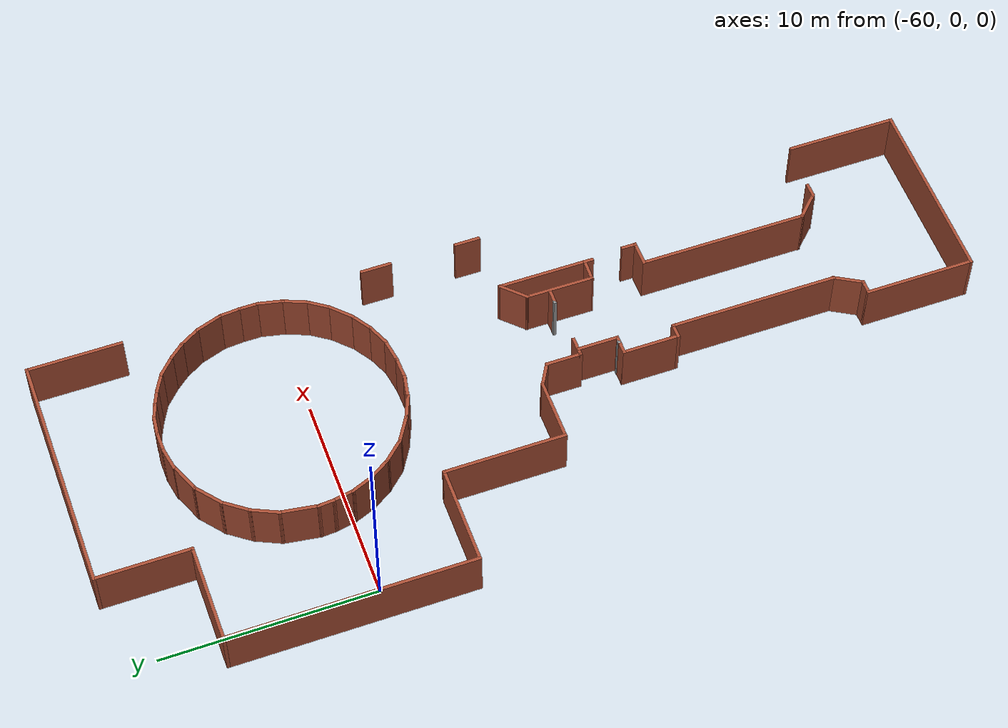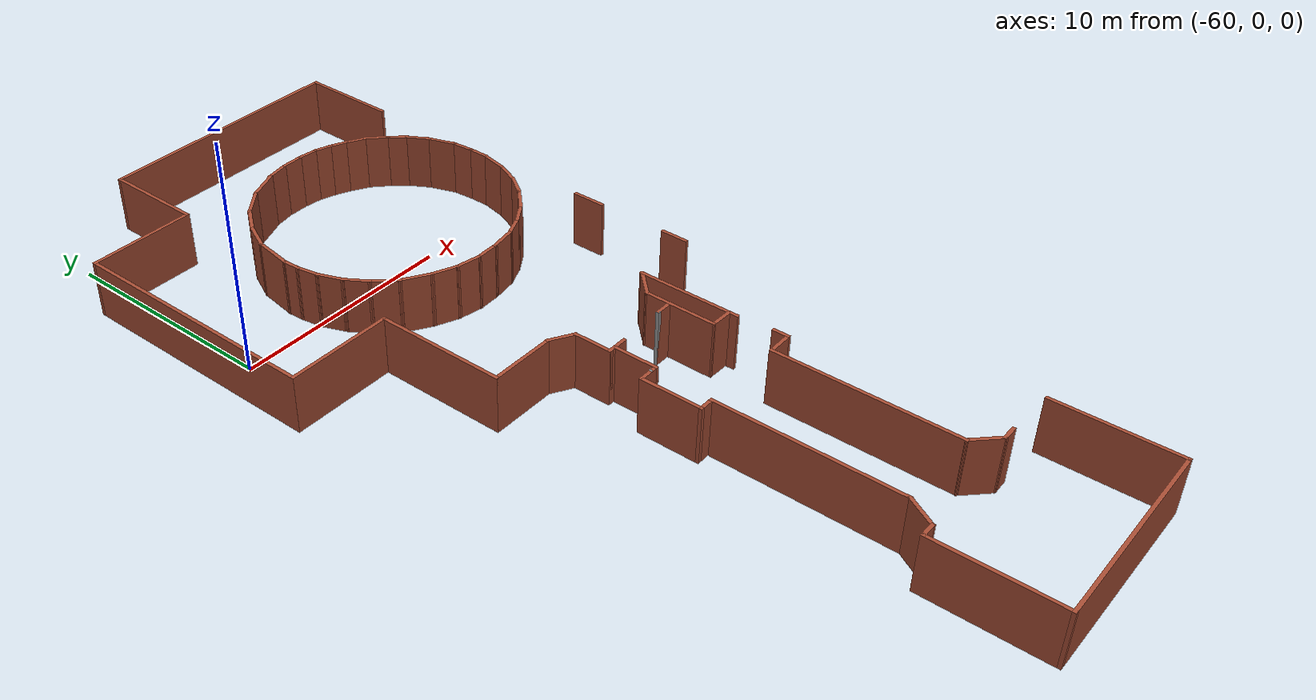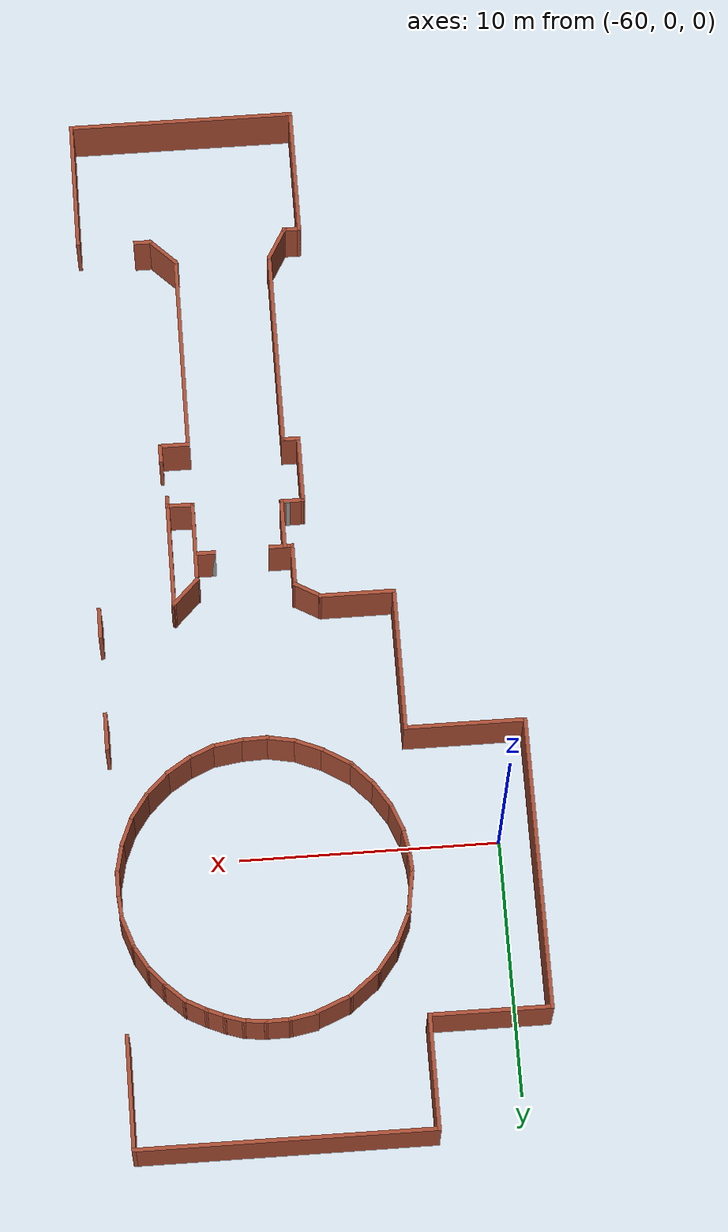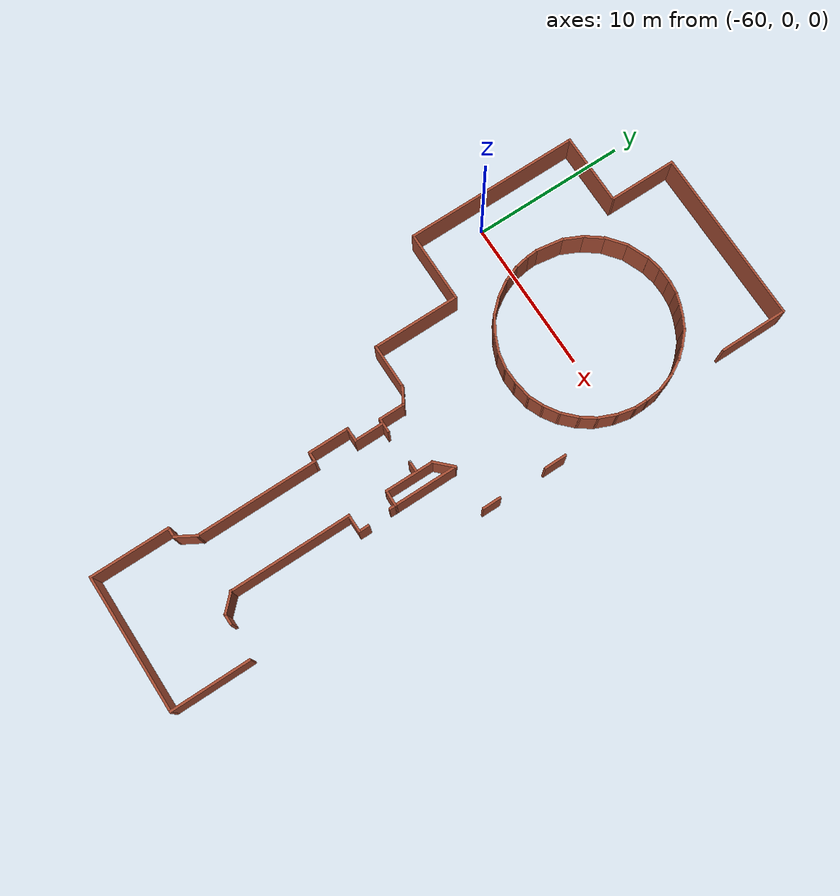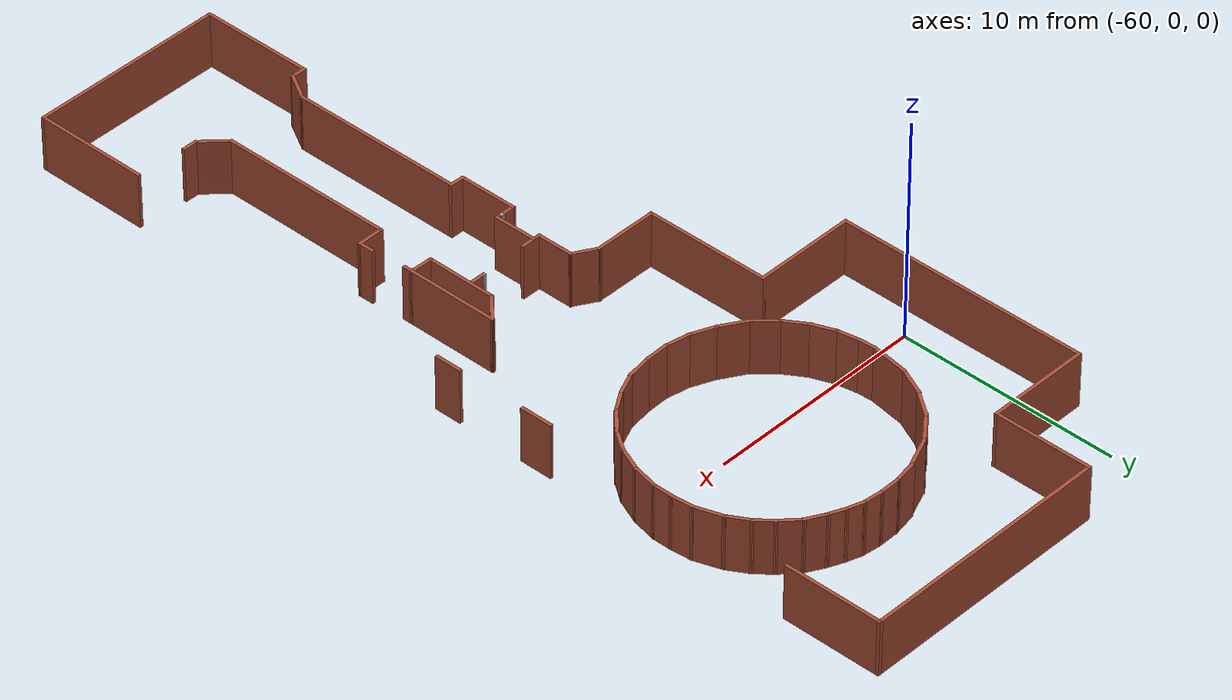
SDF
<sdf version="1.7">
 <model name="TD1modelado">
  <pose>-6.73237 -9.45588 0 0 -0 0</pose>
  <link name="Wall_10">
   <collision name="Wall_10_Collision">
    <geometry><box><size>0.5 0.15 2.5</size></box></geometry>
    <pose>0 0 1.25 0 -0 0</pose>
   </collision>
   <visual name="Wall_10_Visual">
    <pose>0 0 1.25 0 -0 0</pose>
    <geometry><box><size>0.5 0.15 2.5</size></box></geometry>
    <material>
     <script><uri>file://media/materials/scripts/gazebo.material</uri><name>Gazebo/Bricks</name></script>
     <ambient>1 1 1 1</ambient>
    </material>
    <meta><layer>0</layer></meta>
   </visual>
   <pose>-41.4096 -4.6047 0 0 -0 1.5708</pose>
  </link>
  <link name="Wall_100">
   <collision name="Wall_100_Collision">
    <geometry><box><size>1.43544 0.15 2.5</size></box></geometry>
    <pose>0 0 1.25 0 -0 0</pose>
   </collision>
   <visual name="Wall_100_Visual">
    <pose>0 0 1.25 0 -0 0</pose>
    <geometry><box><size>1.43544 0.15 2.5</size></box></geometry>
    <material>
     <script><uri>file://media/materials/scripts/gazebo.material</uri><name>Gazebo/Bricks</name></script>
     <ambient>1 1 1 1</ambient>
    </material>
    <meta><layer>0</layer></meta>
   </visual>
   <pose>-49.2151 13.2258 0 0 -0 -2.00813</pose>
  </link>
  <link name="Wall_101">
   <collision name="Wall_101_Collision">
    <geometry><box><size>1.83326 0.15 2.5</size></box></geometry>
    <pose>0 0 1.25 0 -0 0</pose>
   </collision>
   <visual name="Wall_101_Visual">
    <pose>0 0 1.25 0 -0 0</pose>
    <geometry><box><size>1.83326 0.15 2.5</size></box></geometry>
    <material>
     <script><uri>file://media/materials/scripts/gazebo.material</uri><name>Gazebo/Bricks</name></script>
     <ambient>1 1 1 1</ambient>
    </material>
    <meta><layer>0</layer></meta>
   </visual>
   <pose>-49.6159 11.8118 0 0 -0 -1.72413</pose>
  </link>
  <link name="Wall_102">
   <collision name="Wall_102_Collision">
    <geometry><box><size>0.84713 0.15 2.5</size></box></geometry>
    <pose>0 0 1.25 0 -0 0</pose>
   </collision>
   <visual name="Wall_102_Visual">
    <pose>0 0 1.25 0 -0 0</pose>
    <geometry><box><size>0.84713 0.15 2.5</size></box></geometry>
    <material>
     <script><uri>file://media/materials/scripts/gazebo.material</uri><name>Gazebo/Bricks</name></script>
     <ambient>1 1 1 1</ambient>
    </material>
    <meta><layer>0</layer></meta>
   </visual>
   <pose>-49.7218 10.6322 0 0 -0 -1.50567</pose>
  </link>
  <link name="Wall_104">
   <collision name="Wall_104_Collision">
    <geometry><box><size>1.08737 0.15 2.5</size></box></geometry>
    <pose>0 0 1.25 0 -0 0</pose>
   </collision>
   <visual name="Wall_104_Visual">
    <pose>0 0 1.25 0 -0 0</pose>
    <geometry><box><size>1.08737 0.15 2.5</size></box></geometry>
    <material>
     <script><uri>file://media/materials/scripts/gazebo.material</uri><name>Gazebo/Bricks</name></script>
     <ambient>1 1 1 1</ambient>
    </material>
    <meta><layer>0</layer></meta>
   </visual>
   <pose>-49.6159 9.82316 0 0 -0 -1.39239</pose>
  </link>
  <link name="Wall_105">
   <collision name="Wall_105_Collision">
    <geometry><box><size>1.22277 0.15 2.5</size></box></geometry>
    <pose>0 0 1.25 0 -0 0</pose>
   </collision>
   <visual name="Wall_105_Visual">
    <pose>0 0 1.25 0 -0 0</pose>
    <geometry><box><size>1.22277 0.15 2.5</size></box></geometry>
    <material>
     <script><uri>file://media/materials/scripts/gazebo.material</uri><name>Gazebo/Bricks</name></script>
     <ambient>1 1 1 1</ambient>
    </material>
    <meta><layer>0</layer></meta>
   </visual>
   <pose>-49.3361 8.86286 0 0 -0 -1.19552</pose>
  </link>
  <link name="Wall_106">
   <collision name="Wall_106_Collision">
    <geometry><box><size>1.2113 0.15 2.5</size></box></geometry>
    <pose>0 0 1.25 0 -0 0</pose>
   </collision>
   <visual name="Wall_106_Visual">
    <pose>0 0 1.25 0 -0 0</pose>
    <geometry><box><size>1.2113 0.15 2.5</size></box></geometry>
    <material>
     <script><uri>file://media/materials/scripts/gazebo.material</uri><name>Gazebo/Bricks</name></script>
     <ambient>1 1 1 1</ambient>
    </material>
    <meta><layer>0</layer></meta>
   </visual>
   <pose>-48.8522 7.91768 0 0 -0 -0.998603</pose>
  </link>
  <link name="Wall_107">
   <collision name="Wall_107_Collision">
    <geometry><box><size>1.30569 0.15 2.5</size></box></geometry>
    <pose>0 0 1.25 0 -0 0</pose>
   </collision>
   <visual name="Wall_107_Visual">
    <pose>0 0 1.25 0 -0 0</pose>
    <geometry><box><size>1.30569 0.15 2.5</size></box></geometry>
    <material>
     <script><uri>file://media/materials/scripts/gazebo.material</uri><name>Gazebo/Bricks</name></script>
     <ambient>1 1 1 1</ambient>
    </material>
    <meta><layer>0</layer></meta>
   </visual>
   <pose>-48.1717 7.04812 0 0 -0 -0.822418</pose>
  </link>
  <link name="Wall_108">
   <collision name="Wall_108_Collision">
    <geometry><box><size>1.42607 0.15 2.5</size></box></geometry>
    <pose>0 0 1.25 0 -0 0</pose>
   </collision>
   <visual name="Wall_108_Visual">
    <pose>0 0 1.25 0 -0 0</pose>
    <geometry><box><size>1.42607 0.15 2.5</size></box></geometry>
    <material>
     <script><uri>file://media/materials/scripts/gazebo.material</uri><name>Gazebo/Bricks</name></script>
     <ambient>1 1 1 1</ambient>
    </material>
    <meta><layer>0</layer></meta>
   </visual>
   <pose>-47.234 6.29197 0 0 -0 -0.548549</pose>
  </link>
  <link name="Wall_109">
   <collision name="Wall_109_Collision">
    <geometry><box><size>1.24815 0.15 2.5</size></box></geometry>
    <pose>0 0 1.25 0 -0 0</pose>
   </collision>
   <visual name="Wall_109_Visual">
    <pose>0 0 1.25 0 -0 0</pose>
    <geometry><box><size>1.24815 0.15 2.5</size></box></geometry>
    <material>
     <script><uri>file://media/materials/scripts/gazebo.material</uri><name>Gazebo/Bricks</name></script>
     <ambient>1 1 1 1</ambient>
    </material>
    <meta><layer>0</layer></meta>
   </visual>
   <pose>-46.183 5.74755 0 0 -0 -0.39585</pose>
  </link>
  <link name="Wall_110">
   <collision name="Wall_110_Collision">
    <geometry><box><size>1.21184 0.15 2.5</size></box></geometry>
    <pose>0 0 1.25 0 -0 0</pose>
   </collision>
   <visual name="Wall_110_Visual">
    <pose>0 0 1.25 0 -0 0</pose>
    <geometry><box><size>1.21184 0.15 2.5</size></box></geometry>
    <material>
     <script><uri>file://media/materials/scripts/gazebo.material</uri><name>Gazebo/Bricks</name></script>
     <ambient>1 1 1 1</ambient>
    </material>
    <meta><layer>0</layer></meta>
   </visual>
   <pose>-45.1546 5.43753 0 0 -0 -0.186223</pose>
  </link>
  <link name="Wall_111">
   <collision name="Wall_111_Collision">
    <geometry><box><size>1.14857 0.15 2.5</size></box></geometry>
    <pose>0 0 1.25 0 -0 0</pose>
   </collision>
   <visual name="Wall_111_Visual">
    <pose>0 0 1.25 0 -0 0</pose>
    <geometry><box><size>1.14857 0.15 2.5</size></box></geometry>
    <material>
     <script><uri>file://media/materials/scripts/gazebo.material</uri><name>Gazebo/Bricks</name></script>
     <ambient>1 1 1 1</ambient>
    </material>
    <meta><layer>0</layer></meta>
   </visual>
   <pose>-44.1338 5.35435 0 0 -0 0.030294</pose>
  </link>
  <link name="Wall_112">
   <collision name="Wall_112_Collision">
    <geometry><box><size>1.26643 0.15 2.5</size></box></geometry>
    <pose>0 0 1.25 0 -0 0</pose>
   </collision>
   <visual name="Wall_112_Visual">
    <pose>0 0 1.25 0 -0 0</pose>
    <geometry><box><size>1.26643 0.15 2.5</size></box></geometry>
    <material>
     <script><uri>file://media/materials/scripts/gazebo.material</uri><name>Gazebo/Bricks</name></script>
     <ambient>1 1 1 1</ambient>
    </material>
    <meta><layer>0</layer></meta>
   </visual>
   <pose>-43.0828 5.45265 0 0 -0 0.14956</pose>
  </link>
  <link name="Wall_113">
   <collision name="Wall_113_Collision">
    <geometry><box><size>1.1528 0.15 2.5</size></box></geometry>
    <pose>0 0 1.25 0 -0 0</pose>
   </collision>
   <visual name="Wall_113_Visual">
    <pose>0 0 1.25 0 -0 0</pose>
    <geometry><box><size>1.1528 0.15 2.5</size></box></geometry>
    <material>
     <script><uri>file://media/materials/scripts/gazebo.material</uri><name>Gazebo/Bricks</name></script>
     <ambient>1 1 1 1</ambient>
    </material>
    <meta><layer>0</layer></meta>
   </visual>
   <pose>-42.0696 5.73243 0 0 -0 0.402912</pose>
  </link>
  <link name="Wall_114">
   <collision name="Wall_114_Collision">
    <geometry><box><size>1.1904 0.15 2.5</size></box></geometry>
    <pose>0 0 1.25 0 -0 0</pose>
   </collision>
   <visual name="Wall_114_Visual">
    <pose>0 0 1.25 0 -0 0</pose>
    <geometry><box><size>1.1904 0.15 2.5</size></box></geometry>
    <material>
     <script><uri>file://media/materials/scripts/gazebo.material</uri><name>Gazebo/Bricks</name></script>
     <ambient>1 1 1 1</ambient>
    </material>
    <meta><layer>0</layer></meta>
   </visual>
   <pose>-41.1698 6.2088 0 0 -0 0.567844</pose>
  </link>
  <link name="Wall_115">
   <collision name="Wall_115_Collision">
    <geometry><box><size>1.32648 0.15 2.5</size></box></geometry>
    <pose>0 0 1.25 0 -0 0</pose>
   </collision>
   <visual name="Wall_115_Visual">
    <pose>0 0 1.25 0 -0 0</pose>
    <geometry><box><size>1.32648 0.15 2.5</size></box></geometry>
    <material>
     <script><uri>file://media/materials/scripts/gazebo.material</uri><name>Gazebo/Bricks</name></script>
     <ambient>1 1 1 1</ambient>
    </material>
    <meta><layer>0</layer></meta>
   </visual>
   <pose>-40.3078 6.89689 0 0 -0 0.767218</pose>
  </link>
  <link name="Wall_116">
   <collision name="Wall_116_Collision">
    <geometry><box><size>1.20308 0.15 2.5</size></box></geometry>
    <pose>0 0 1.25 0 -0 0</pose>
   </collision>
   <visual name="Wall_116_Visual">
    <pose>0 0 1.25 0 -0 0</pose>
    <geometry><box><size>1.20308 0.15 2.5</size></box></geometry>
    <material>
     <script><uri>file://media/materials/scripts/gazebo.material</uri><name>Gazebo/Bricks</name></script>
     <ambient>1 1 1 1</ambient>
    </material>
    <meta><layer>0</layer></meta>
   </visual>
   <pose>-39.5819 7.73621 0 0 -0 0.958894</pose>
  </link>
  <link name="Wall_117">
   <collision name="Wall_117_Collision">
    <geometry><box><size>1.28189 0.15 2.5</size></box></geometry>
    <pose>0 0 1.25 0 -0 0</pose>
   </collision>
   <visual name="Wall_117_Visual">
    <pose>0 0 1.25 0 -0 0</pose>
    <geometry><box><size>1.28189 0.15 2.5</size></box></geometry>
    <material>
     <script><uri>file://media/materials/scripts/gazebo.material</uri><name>Gazebo/Bricks</name></script>
     <ambient>1 1 1 1</ambient>
    </material>
    <meta><layer>0</layer></meta>
   </visual>
   <pose>-39.0601 8.68895 0 0 -0 1.17292</pose>
  </link>
  <link name="Wall_118">
   <collision name="Wall_118_Collision">
    <geometry><box><size>1.28018 0.15 2.5</size></box></geometry>
    <pose>0 0 1.25 0 -0 0</pose>
   </collision>
   <visual name="Wall_118_Visual">
    <pose>0 0 1.25 0 -0 0</pose>
    <geometry><box><size>1.28018 0.15 2.5</size></box></geometry>
    <material>
     <script><uri>file://media/materials/scripts/gazebo.material</uri><name>Gazebo/Bricks</name></script>
     <ambient>1 1 1 1</ambient>
    </material>
    <meta><layer>0</layer></meta>
   </visual>
   <pose>-38.7199 9.76267 0 0 -0 1.35503</pose>
  </link>
  <link name="Wall_120">
   <collision name="Wall_120_Collision">
    <geometry><box><size>1 0.15 2.5</size></box></geometry>
    <pose>0 0 1.25 0 -0 0</pose>
   </collision>
   <visual name="Wall_120_Visual">
    <pose>0 0 1.25 0 -0 0</pose>
    <geometry><box><size>1 0.15 2.5</size></box></geometry>
    <material>
     <script><uri>file://media/materials/scripts/gazebo.material</uri><name>Gazebo/Bricks</name></script>
     <ambient>1 1 1 1</ambient>
    </material>
    <meta><layer>0</layer></meta>
   </visual>
   <pose>-38.5989 10.7397 0 0 -0 1.5708</pose>
  </link>
  <link name="Wall_121">
   <collision name="Wall_121_Collision">
    <geometry><box><size>1.08755 0.15 2.5</size></box></geometry>
    <pose>0 0 1.25 0 -0 0</pose>
   </collision>
   <visual name="Wall_121_Visual">
    <pose>0 0 1.25 0 -0 0</pose>
    <geometry><box><size>1.08755 0.15 2.5</size></box></geometry>
    <material>
     <script><uri>file://media/materials/scripts/gazebo.material</uri><name>Gazebo/Bricks</name></script>
     <ambient>1 1 1 1</ambient>
    </material>
    <meta><layer>0</layer></meta>
   </visual>
   <pose>-38.6367 11.6319 0 0 -0 1.65153</pose>
  </link>
  <link name="Wall_122">
   <collision name="Wall_122_Collision">
    <geometry><box><size>1.37905 0.15 2.5</size></box></geometry>
    <pose>0 0 1.25 0 -0 0</pose>
   </collision>
   <visual name="Wall_122_Visual">
    <pose>0 0 1.25 0 -0 0</pose>
    <geometry><box><size>1.37905 0.15 2.5</size></box></geometry>
    <material>
     <script><uri>file://media/materials/scripts/gazebo.material</uri><name>Gazebo/Bricks</name></script>
     <ambient>1 1 1 1</ambient>
    </material>
    <meta><layer>0</layer></meta>
   </visual>
   <pose>-38.8711 12.6814 0 0 -0 1.89644</pose>
  </link>
  <link name="Wall_123">
   <collision name="Wall_123_Collision">
    <geometry><box><size>1.16673 0.15 2.5</size></box></geometry>
    <pose>0 0 1.25 0 -0 0</pose>
   </collision>
   <visual name="Wall_123_Visual">
    <pose>0 0 1.25 0 -0 0</pose>
    <geometry><box><size>1.16673 0.15 2.5</size></box></geometry>
    <material>
     <script><uri>file://media/materials/scripts/gazebo.material</uri><name>Gazebo/Bricks</name></script>
     <ambient>1 1 1 1</ambient>
    </material>
    <meta><layer>0</layer></meta>
   </visual>
   <pose>-39.3248 13.7022 0 0 -0 2.10101</pose>
  </link>
  <link name="Wall_124">
   <collision name="Wall_124_Collision">
    <geometry><box><size>0.986556 0.15 2.5</size></box></geometry>
    <pose>0 0 1.25 0 -0 0</pose>
   </collision>
   <visual name="Wall_124_Visual">
    <pose>0 0 1.25 0 -0 0</pose>
    <geometry><box><size>0.986556 0.15 2.5</size></box></geometry>
    <material>
     <script><uri>file://media/materials/scripts/gazebo.material</uri><name>Gazebo/Bricks</name></script>
     <ambient>1 1 1 1</ambient>
    </material>
    <meta><layer>0</layer></meta>
   </visual>
   <pose>-39.8541 14.4583 0 0 -0 2.27942</pose>
  </link>
  <link name="Wall_125">
   <collision name="Wall_125_Collision">
    <geometry><box><size>1.14501 0.15 2.5</size></box></geometry>
    <pose>0 0 1.25 0 -0 0</pose>
   </collision>
   <visual name="Wall_125_Visual">
    <pose>0 0 1.25 0 -0 0</pose>
    <geometry><box><size>1.14501 0.15 2.5</size></box></geometry>
    <material>
     <script><uri>file://media/materials/scripts/gazebo.material</uri><name>Gazebo/Bricks</name></script>
     <ambient>1 1 1 1</ambient>
    </material>
    <meta><layer>0</layer></meta>
   </visual>
   <pose>-40.4892 15.1162 0 0 -0 2.38844</pose>
  </link>
  <link name="Wall_126">
   <collision name="Wall_126_Collision">
    <geometry><box><size>1.04315 0.15 2.5</size></box></geometry>
    <pose>0 0 1.25 0 -0 0</pose>
   </collision>
   <visual name="Wall_126_Visual">
    <pose>0 0 1.25 0 -0 0</pose>
    <geometry><box><size>1.04315 0.15 2.5</size></box></geometry>
    <material>
     <script><uri>file://media/materials/scripts/gazebo.material</uri><name>Gazebo/Bricks</name></script>
     <ambient>1 1 1 1</ambient>
    </material>
    <meta><layer>0</layer></meta>
   </visual>
   <pose>-41.2454 15.6682 0 0 -0 2.64765</pose>
  </link>
  <link name="Wall_127">
   <collision name="Wall_127_Collision">
    <geometry><box><size>0.874794 0.15 2.5</size></box></geometry>
    <pose>0 0 1.25 0 -0 0</pose>
   </collision>
   <visual name="Wall_127_Visual">
    <pose>0 0 1.25 0 -0 0</pose>
    <geometry><box><size>0.874794 0.15 2.5</size></box></geometry>
    <material>
     <script><uri>file://media/materials/scripts/gazebo.material</uri><name>Gazebo/Bricks</name></script>
     <ambient>1 1 1 1</ambient>
    </material>
    <meta><layer>0</layer></meta>
   </visual>
   <pose>-41.9713 16.0235 0 0 -0 2.73396</pose>
  </link>
  <link name="Wall_128">
   <collision name="Wall_128_Collision">
    <geometry><box><size>0.881703 0.15 2.5</size></box></geometry>
    <pose>0 0 1.25 0 -0 0</pose>
   </collision>
   <visual name="Wall_128_Visual">
    <pose>0 0 1.25 0 -0 0</pose>
    <geometry><box><size>0.881703 0.15 2.5</size></box></geometry>
    <material>
     <script><uri>file://media/materials/scripts/gazebo.material</uri><name>Gazebo/Bricks</name></script>
     <ambient>1 1 1 1</ambient>
    </material>
    <meta><layer>0</layer></meta>
   </visual>
   <pose>-42.6518 16.2806 0 0 -0 2.82638</pose>
  </link>
  <link name="Wall_129">
   <collision name="Wall_129_Collision">
    <geometry><box><size>0.971661 0.15 2.5</size></box></geometry>
    <pose>0 0 1.25 0 -0 0</pose>
   </collision>
   <visual name="Wall_129_Visual">
    <pose>0 0 1.25 0 -0 0</pose>
    <geometry><box><size>0.971661 0.15 2.5</size></box></geometry>
    <material>
     <script><uri>file://media/materials/scripts/gazebo.material</uri><name>Gazebo/Bricks</name></script>
     <ambient>1 1 1 1</ambient>
    </material>
    <meta><layer>0</layer></meta>
   </visual>
   <pose>-43.4079 16.4394 0 0 -0 3.03093</pose>
  </link>
  <link name="Wall_130">
   <collision name="Wall_130_Collision">
    <geometry><box><size>1.07249 0.15 2.5</size></box></geometry>
    <pose>0 0 1.25 0 -0 0</pose>
   </collision>
   <visual name="Wall_130_Visual">
    <pose>0 0 1.25 0 -0 0</pose>
    <geometry><box><size>1.07249 0.15 2.5</size></box></geometry>
    <material>
     <script><uri>file://media/materials/scripts/gazebo.material</uri><name>Gazebo/Bricks</name></script>
     <ambient>1 1 1 1</ambient>
    </material>
    <meta><layer>0</layer></meta>
   </visual>
   <pose>-44.2775 16.4772 0 0 -0 -3.1252</pose>
  </link>
  <link name="Wall_131">
   <collision name="Wall_131_Collision">
    <geometry><box><size>1.16447 0.15 2.5</size></box></geometry>
    <pose>0 0 1.25 0 -0 0</pose>
   </collision>
   <visual name="Wall_131_Visual">
    <pose>0 0 1.25 0 -0 0</pose>
    <geometry><box><size>1.16447 0.15 2.5</size></box></geometry>
    <material>
     <script><uri>file://media/materials/scripts/gazebo.material</uri><name>Gazebo/Bricks</name></script>
     <ambient>1 1 1 1</ambient>
    </material>
    <meta><layer>0</layer></meta>
   </visual>
   <pose>-45.2378 16.3789 0 0 -0 -2.96174</pose>
  </link>
  <link name="Wall_14">
   <collision name="Wall_14_Collision">
    <geometry><box><size>0.15 0.15 2.5</size></box></geometry>
    <pose>0 0 1.25 0 -0 0</pose>
   </collision>
   <visual name="Wall_14_Visual">
    <pose>0 0 1.25 0 -0 0</pose>
    <geometry><box><size>0.15 0.15 2.5</size></box></geometry>
    <material>
     <script><uri>file://media/materials/scripts/gazebo.material</uri><name>Gazebo/Grey</name></script>
     <ambient>1 1 1 1</ambient>
    </material>
    <meta><layer>0</layer></meta>
   </visual>
   <pose>-43.0807 -2.35971 0 0 -0 0</pose>
  </link>
  <link name="Wall_18">
   <collision name="Wall_18_Collision">
    <geometry><box><size>4.25 0.15 2.5</size></box></geometry>
    <pose>0 0 1.25 0 -0 0</pose>
   </collision>
   <visual name="Wall_18_Visual">
    <pose>0 0 1.25 0 -0 0</pose>
    <geometry><box><size>4.25 0.15 2.5</size></box></geometry>
    <material>
     <script><uri>file://media/materials/scripts/gazebo.material</uri><name>Gazebo/Bricks</name></script>
     <ambient>1 1 1 1</ambient>
    </material>
    <meta><layer>0</layer></meta>
   </visual>
   <pose>-41.4096 -2.3797 0 0 -0 1.5708</pose>
  </link>
  <link name="Wall_29">
   <collision name="Wall_29_Collision">
    <geometry><box><size>0.15 0.15 2.5</size></box></geometry>
    <pose>0 0 1.25 0 -0 0</pose>
   </collision>
   <visual name="Wall_29_Visual">
    <pose>0 0 1.25 0 -0 0</pose>
    <geometry><box><size>0.15 0.15 2.5</size></box></geometry>
    <material>
     <script><uri>file://media/materials/scripts/gazebo.material</uri><name>Gazebo/Grey</name></script>
     <ambient>1 1 1 1</ambient>
    </material>
    <meta><layer>0</layer></meta>
   </visual>
   <pose>-46.1092 -4.28763 0 0 -0 0</pose>
  </link>
  <link name="Wall_31">
   <collision name="Wall_31_Collision">
    <geometry><box><size>1.12352 0.15 2.5</size></box></geometry>
    <pose>0 0 1.25 0 -0 0</pose>
   </collision>
   <visual name="Wall_31_Visual">
    <pose>0 0 1.25 0 -0 0</pose>
    <geometry><box><size>1.12352 0.15 2.5</size></box></geometry>
    <material>
     <script><uri>file://media/materials/scripts/gazebo.material</uri><name>Gazebo/Bricks</name></script>
     <ambient>1 1 1 1</ambient>
    </material>
    <meta><layer>0</layer></meta>
   </visual>
   <pose>-41.8962 -4.4163 0 0 -0 -0.027549</pose>
  </link>
  <link name="Wall_35">
   <collision name="Wall_35_Collision">
    <geometry><box><size>1.5 0.15 2.5</size></box></geometry>
    <pose>0 0 1.25 0 -0 0</pose>
   </collision>
   <visual name="Wall_35_Visual">
    <pose>0 0 1.25 0 -0 0</pose>
    <geometry><box><size>1.5 0.15 2.5</size></box></geometry>
    <material>
     <script><uri>file://media/materials/scripts/gazebo.material</uri><name>Gazebo/Bricks</name></script>
     <ambient>1 1 1 1</ambient>
    </material>
    <meta><layer>0</layer></meta>
   </visual>
   <pose>-41.8869 -0.807001 0 0 -0 -2.35619</pose>
  </link>
  <link name="Wall_37">
   <collision name="Wall_37_Collision">
    <geometry><box><size>3.26864 0.15 2.5</size></box></geometry>
    <pose>0 0 1.25 0 -0 0</pose>
   </collision>
   <visual name="Wall_37_Visual">
    <pose>0 0 1.25 0 -0 0</pose>
    <geometry><box><size>3.26864 0.15 2.5</size></box></geometry>
    <material>
     <script><uri>file://media/materials/scripts/gazebo.material</uri><name>Gazebo/Bricks</name></script>
     <ambient>1 1 1 1</ambient>
    </material>
    <meta><layer>0</layer></meta>
   </visual>
   <pose>-42.3735 -2.84359 0 0 -0 1.56485</pose>
  </link>
  <link name="Wall_39">
   <collision name="Wall_39_Collision">
    <geometry><box><size>0.75 0.15 2.5</size></box></geometry>
    <pose>0 0 1.25 0 -0 0</pose>
   </collision>
   <visual name="Wall_39_Visual">
    <pose>0 0 1.25 0 -0 0</pose>
    <geometry><box><size>0.75 0.15 2.5</size></box></geometry>
    <material>
     <script><uri>file://media/materials/scripts/gazebo.material</uri><name>Gazebo/Bricks</name></script>
     <ambient>1 1 1 1</ambient>
    </material>
    <meta><layer>0</layer></meta>
   </visual>
   <pose>-42.7807 -2.35971 0 0 -0 0</pose>
  </link>
  <link name="Wall_4">
   <collision name="Wall_4_Collision">
    <geometry><box><size>0.75 0.15 2.5</size></box></geometry>
    <pose>0 0 1.25 0 -0 0</pose>
   </collision>
   <visual name="Wall_4_Visual">
    <pose>0 0 1.25 0 -0 0</pose>
    <geometry><box><size>0.75 0.15 2.5</size></box></geometry>
    <material>
     <script><uri>file://media/materials/scripts/gazebo.material</uri><name>Gazebo/Bricks</name></script>
     <ambient>1 1 1 1</ambient>
    </material>
    <meta><layer>0</layer></meta>
   </visual>
   <pose>-41.115 -15.7635 0 0 -0 3.14159</pose>
  </link>
  <link name="Wall_41">
   <collision name="Wall_41_Collision">
    <geometry><box><size>1.5 0.15 2.5</size></box></geometry>
    <pose>0 0 1.25 0 -0 0</pose>
   </collision>
   <visual name="Wall_41_Visual">
    <pose>0 0 1.25 0 -0 0</pose>
    <geometry><box><size>1.5 0.15 2.5</size></box></geometry>
    <material>
     <script><uri>file://media/materials/scripts/gazebo.material</uri><name>Gazebo/Bricks</name></script>
     <ambient>1 1 1 1</ambient>
    </material>
    <meta><layer>0</layer></meta>
   </visual>
   <pose>-38.5 4.64659 0 0 -0 -1.5708</pose>
  </link>
  <link name="Wall_46">
   <collision name="Wall_46_Collision">
    <geometry><box><size>1.25 0.15 2.5</size></box></geometry>
    <pose>0 0 1.25 0 -0 0</pose>
   </collision>
   <visual name="Wall_46_Visual">
    <pose>0 0 1.25 0 -0 0</pose>
    <geometry><box><size>1.25 0.15 2.5</size></box></geometry>
    <material>
     <script><uri>file://media/materials/scripts/gazebo.material</uri><name>Gazebo/Bricks</name></script>
     <ambient>1 1 1 1</ambient>
    </material>
    <meta><layer>0</layer></meta>
   </visual>
   <pose>-38.5 0.239787 0 0 -0 1.5708</pose>
  </link>
  <link name="Wall_5">
   <collision name="Wall_5_Collision">
    <geometry><box><size>1.5 0.15 2.5</size></box></geometry>
    <pose>0 0 1.25 0 -0 0</pose>
   </collision>
   <visual name="Wall_5_Visual">
    <pose>0 0 1.25 0 -0 0</pose>
    <geometry><box><size>1.5 0.15 2.5</size></box></geometry>
    <material>
     <script><uri>file://media/materials/scripts/gazebo.material</uri><name>Gazebo/Bricks</name></script>
     <ambient>1 1 1 1</ambient>
    </material>
    <meta><layer>0</layer></meta>
   </visual>
   <pose>-41.8923 -15.2862 0 0 -0 2.35619</pose>
  </link>
  <link name="Wall_6">
   <collision name="Wall_6_Collision">
    <geometry><box><size>8 0.15 2.5</size></box></geometry>
    <pose>0 0 1.25 0 -0 0</pose>
   </collision>
   <visual name="Wall_6_Visual">
    <pose>0 0 1.25 0 -0 0</pose>
    <geometry><box><size>8 0.15 2.5</size></box></geometry>
    <material>
     <script><uri>file://media/materials/scripts/gazebo.material</uri><name>Gazebo/Bricks</name></script>
     <ambient>1 1 1 1</ambient>
    </material>
    <meta><layer>0</layer></meta>
   </visual>
   <pose>-42.3696 -10.8839 0 0 -0 1.5708</pose>
  </link>
  <link name="Wall_7">
   <collision name="Wall_7_Collision">
    <geometry><box><size>1.25 0.15 2.5</size></box></geometry>
    <pose>0 0 1.25 0 -0 0</pose>
   </collision>
   <visual name="Wall_7_Visual">
    <pose>0 0 1.25 0 -0 0</pose>
    <geometry><box><size>1.25 0.15 2.5</size></box></geometry>
    <material>
     <script><uri>file://media/materials/scripts/gazebo.material</uri><name>Gazebo/Bricks</name></script>
     <ambient>1 1 1 1</ambient>
    </material>
    <meta><layer>0</layer></meta>
   </visual>
   <pose>-41.8196 -6.95887 0 0 -0 0</pose>
  </link>
  <link name="Wall_73">
   <collision name="Wall_73_Collision">
    <geometry><box><size>4.5 0.15 2.5</size></box></geometry>
    <pose>0 0 1.25 0 -0 0</pose>
   </collision>
   <visual name="Wall_73_Visual">
    <pose>0 0 1.25 0 -0 0</pose>
    <geometry><box><size>4.5 0.15 2.5</size></box></geometry>
    <material>
     <script><uri>file://media/materials/scripts/gazebo.material</uri><name>Gazebo/Bricks</name></script>
     <ambient>1 1 1 1</ambient>
    </material>
    <meta><layer>0</layer></meta>
   </visual>
   <pose>-38.6 18.8466 0 0 -0 1.5708</pose>
  </link>
  <link name="Wall_74">
   <collision name="Wall_74_Collision">
    <geometry><box><size>11.5 0.15 2.5</size></box></geometry>
    <pose>0 0 1.25 0 -0 0</pose>
   </collision>
   <visual name="Wall_74_Visual">
    <pose>0 0 1.25 0 -0 0</pose>
    <geometry><box><size>11.5 0.15 2.5</size></box></geometry>
    <material>
     <script><uri>file://media/materials/scripts/gazebo.material</uri><name>Gazebo/Bricks</name></script>
     <ambient>1 1 1 1</ambient>
    </material>
    <meta><layer>0</layer></meta>
   </visual>
   <pose>-44.275 21.0216 0 0 -0 3.14159</pose>
  </link>
  <link name="Wall_75">
   <collision name="Wall_75_Collision">
    <geometry><box><size>4.5 0.15 2.5</size></box></geometry>
    <pose>0 0 1.25 0 -0 0</pose>
   </collision>
   <visual name="Wall_75_Visual">
    <pose>0 0 1.25 0 -0 0</pose>
    <geometry><box><size>4.5 0.15 2.5</size></box></geometry>
    <material>
     <script><uri>file://media/materials/scripts/gazebo.material</uri><name>Gazebo/Bricks</name></script>
     <ambient>1 1 1 1</ambient>
    </material>
    <meta><layer>0</layer></meta>
   </visual>
   <pose>-49.95 18.8466 0 0 -0 -1.5708</pose>
  </link>
  <link name="Wall_76">
   <collision name="Wall_76_Collision">
    <geometry><box><size>4.75 0.15 2.5</size></box></geometry>
    <pose>0 0 1.25 0 -0 0</pose>
   </collision>
   <visual name="Wall_76_Visual">
    <pose>0 0 1.25 0 -0 0</pose>
    <geometry><box><size>4.75 0.15 2.5</size></box></geometry>
    <material>
     <script><uri>file://media/materials/scripts/gazebo.material</uri><name>Gazebo/Bricks</name></script>
     <ambient>1 1 1 1</ambient>
    </material>
    <meta><layer>0</layer></meta>
   </visual>
   <pose>-52.25 16.6716 0 0 -0 3.14159</pose>
  </link>
  <link name="Wall_77">
   <collision name="Wall_77_Collision">
    <geometry><box><size>11.5 0.15 2.5</size></box></geometry>
    <pose>0 0 1.25 0 -0 0</pose>
   </collision>
   <visual name="Wall_77_Visual">
    <pose>0 0 1.25 0 -0 0</pose>
    <geometry><box><size>11.5 0.15 2.5</size></box></geometry>
    <material>
     <script><uri>file://media/materials/scripts/gazebo.material</uri><name>Gazebo/Bricks</name></script>
     <ambient>1 1 1 1</ambient>
    </material>
    <meta><layer>0</layer></meta>
   </visual>
   <pose>-54.55 10.9966 0 0 -0 -1.5708</pose>
  </link>
  <link name="Wall_78">
   <collision name="Wall_78_Collision">
    <geometry><box><size>4.75 0.15 2.5</size></box></geometry>
    <pose>0 0 1.25 0 -0 0</pose>
   </collision>
   <visual name="Wall_78_Visual">
    <pose>0 0 1.25 0 -0 0</pose>
    <geometry><box><size>4.75 0.15 2.5</size></box></geometry>
    <material>
     <script><uri>file://media/materials/scripts/gazebo.material</uri><name>Gazebo/Bricks</name></script>
     <ambient>1 1 1 1</ambient>
    </material>
    <meta><layer>0</layer></meta>
   </visual>
   <pose>-52.25 5.32159 0 0 -0 0</pose>
  </link>
  <link name="Wall_79">
   <collision name="Wall_79_Collision">
    <geometry><box><size>5.75 0.15 2.5</size></box></geometry>
    <pose>0 0 1.25 0 -0 0</pose>
   </collision>
   <visual name="Wall_79_Visual">
    <pose>0 0 1.25 0 -0 0</pose>
    <geometry><box><size>5.75 0.15 2.5</size></box></geometry>
    <material>
     <script><uri>file://media/materials/scripts/gazebo.material</uri><name>Gazebo/Bricks</name></script>
     <ambient>1 1 1 1</ambient>
    </material>
    <meta><layer>0</layer></meta>
   </visual>
   <pose>-49.95 2.52159 0 0 -0 -1.5708</pose>
  </link>
  <link name="Wall_8">
   <collision name="Wall_8_Collision">
    <geometry><box><size>0.75 0.15 2.5</size></box></geometry>
    <pose>0 0 1.25 0 -0 0</pose>
   </collision>
   <visual name="Wall_8_Visual">
    <pose>0 0 1.25 0 -0 0</pose>
    <geometry><box><size>0.75 0.15 2.5</size></box></geometry>
    <material>
     <script><uri>file://media/materials/scripts/gazebo.material</uri><name>Gazebo/Bricks</name></script>
     <ambient>1 1 1 1</ambient>
    </material>
    <meta><layer>0</layer></meta>
   </visual>
   <pose>-41.2696 -6.65887 0 0 -0 1.5708</pose>
  </link>
  <link name="Wall_80">
   <collision name="Wall_80_Collision">
    <geometry><box><size>3 0.15 2.5</size></box></geometry>
    <pose>0 0 1.25 0 -0 0</pose>
   </collision>
   <visual name="Wall_80_Visual">
    <pose>0 0 1.25 0 -0 0</pose>
    <geometry><box><size>3 0.15 2.5</size></box></geometry>
    <material>
     <script><uri>file://media/materials/scripts/gazebo.material</uri><name>Gazebo/Bricks</name></script>
     <ambient>1 1 1 1</ambient>
    </material>
    <meta><layer>0</layer></meta>
   </visual>
   <pose>-48.525 -0.278412 0 0 -0 0</pose>
  </link>
  <link name="Wall_81">
   <collision name="Wall_81_Collision">
    <geometry><box><size>1.25 0.15 2.5</size></box></geometry>
    <pose>0 0 1.25 0 -0 0</pose>
   </collision>
   <visual name="Wall_81_Visual">
    <pose>0 0 1.25 0 -0 0</pose>
    <geometry><box><size>1.25 0.15 2.5</size></box></geometry>
    <material>
     <script><uri>file://media/materials/scripts/gazebo.material</uri><name>Gazebo/Bricks</name></script>
     <ambient>1 1 1 1</ambient>
    </material>
    <meta><layer>0</layer></meta>
   </visual>
   <pose>-46.6237 -0.553413 0 0 -0 -0.523599</pose>
  </link>
  <link name="Wall_82">
   <collision name="Wall_82_Collision">
    <geometry><box><size>1.75 0.15 2.5</size></box></geometry>
    <pose>0 0 1.25 0 -0 0</pose>
   </collision>
   <visual name="Wall_82_Visual">
    <pose>0 0 1.25 0 -0 0</pose>
    <geometry><box><size>1.75 0.15 2.5</size></box></geometry>
    <material>
     <script><uri>file://media/materials/scripts/gazebo.material</uri><name>Gazebo/Bricks</name></script>
     <ambient>1 1 1 1</ambient>
    </material>
    <meta><layer>0</layer></meta>
   </visual>
   <pose>-46.1474 -1.62841 0 0 -0 -1.5708</pose>
  </link>
  <link name="Wall_83">
   <collision name="Wall_83_Collision">
    <geometry><box><size>1 0.15 2.5</size></box></geometry>
    <pose>0 0 1.25 0 -0 0</pose>
   </collision>
   <visual name="Wall_83_Visual">
    <pose>0 0 1.25 0 -0 0</pose>
    <geometry><box><size>1 0.15 2.5</size></box></geometry>
    <material>
     <script><uri>file://media/materials/scripts/gazebo.material</uri><name>Gazebo/Bricks</name></script>
     <ambient>1 1 1 1</ambient>
    </material>
    <meta><layer>0</layer></meta>
   </visual>
   <pose>-45.7224 -2.42841 0 0 -0 0</pose>
  </link>
  <link name="Wall_85">
   <collision name="Wall_85_Collision">
    <geometry><box><size>5.25 0.15 2.5</size></box></geometry>
    <pose>0 0 1.25 0 -0 0</pose>
   </collision>
   <visual name="Wall_85_Visual">
    <pose>0 0 1.25 0 -0 0</pose>
    <geometry><box><size>5.25 0.15 2.5</size></box></geometry>
    <material>
     <script><uri>file://media/materials/scripts/gazebo.material</uri><name>Gazebo/Bricks</name></script>
     <ambient>1 1 1 1</ambient>
    </material>
    <meta><layer>0</layer></meta>
   </visual>
   <pose>-38.5311 -18.4716 0 0 -0 -1.5708</pose>
  </link>
  <link name="Wall_86">
   <collision name="Wall_86_Collision">
    <geometry><box><size>9 0.15 2.5</size></box></geometry>
    <pose>0 0 1.25 0 -0 0</pose>
   </collision>
   <visual name="Wall_86_Visual">
    <pose>0 0 1.25 0 -0 0</pose>
    <geometry><box><size>9 0.15 2.5</size></box></geometry>
    <material>
     <script><uri>file://media/materials/scripts/gazebo.material</uri><name>Gazebo/Bricks</name></script>
     <ambient>1 1 1 1</ambient>
    </material>
    <meta><layer>0</layer></meta>
   </visual>
   <pose>-42.9561 -21.0216 0 0 -0 3.14159</pose>
  </link>
  <link name="Wall_87">
   <collision name="Wall_87_Collision">
    <geometry><box><size>5.25 0.15 2.5</size></box></geometry>
    <pose>0 0 1.25 0 -0 0</pose>
   </collision>
   <visual name="Wall_87_Visual">
    <pose>0 0 1.25 0 -0 0</pose>
    <geometry><box><size>5.25 0.15 2.5</size></box></geometry>
    <material>
     <script><uri>file://media/materials/scripts/gazebo.material</uri><name>Gazebo/Bricks</name></script>
     <ambient>1 1 1 1</ambient>
    </material>
    <meta><layer>0</layer></meta>
   </visual>
   <pose>-47.3811 -18.4716 0 0 -0 1.5708</pose>
  </link>
  <link name="Wall_88">
   <collision name="Wall_88_Collision">
    <geometry><box><size>0.75 0.15 2.5</size></box></geometry>
    <pose>0 0 1.25 0 -0 0</pose>
   </collision>
   <visual name="Wall_88_Visual">
    <pose>0 0 1.25 0 -0 0</pose>
    <geometry><box><size>0.75 0.15 2.5</size></box></geometry>
    <material>
     <script><uri>file://media/materials/scripts/gazebo.material</uri><name>Gazebo/Bricks</name></script>
     <ambient>1 1 1 1</ambient>
    </material>
    <meta><layer>0</layer></meta>
   </visual>
   <pose>-47.0811 -15.9216 0 0 -0 0</pose>
  </link>
  <link name="Wall_89">
   <collision name="Wall_89_Collision">
    <geometry><box><size>1.5 0.15 2.5</size></box></geometry>
    <pose>0 0 1.25 0 -0 0</pose>
   </collision>
   <visual name="Wall_89_Visual">
    <pose>0 0 1.25 0 -0 0</pose>
    <geometry><box><size>1.5 0.15 2.5</size></box></geometry>
    <material>
     <script><uri>file://media/materials/scripts/gazebo.material</uri><name>Gazebo/Bricks</name></script>
     <ambient>1 1 1 1</ambient>
    </material>
    <meta><layer>0</layer></meta>
   </visual>
   <pose>-46.4436 -15.337 0 0 -0 1.0472</pose>
  </link>
  <link name="Wall_90">
   <collision name="Wall_90_Collision">
    <geometry><box><size>8 0.15 2.5</size></box></geometry>
    <pose>0 0 1.25 0 -0 0</pose>
   </collision>
   <visual name="Wall_90_Visual">
    <pose>0 0 1.25 0 -0 0</pose>
    <geometry><box><size>8 0.15 2.5</size></box></geometry>
    <material>
     <script><uri>file://media/materials/scripts/gazebo.material</uri><name>Gazebo/Bricks</name></script>
     <ambient>1 1 1 1</ambient>
    </material>
    <meta><layer>0</layer></meta>
   </visual>
   <pose>-46.1061 -10.8275 0 0 -0 1.5708</pose>
  </link>
  <link name="Wall_91">
   <collision name="Wall_91_Collision">
    <geometry><box><size>0.75 0.15 2.5</size></box></geometry>
    <pose>0 0 1.25 0 -0 0</pose>
   </collision>
   <visual name="Wall_91_Visual">
    <pose>0 0 1.25 0 -0 0</pose>
    <geometry><box><size>0.75 0.15 2.5</size></box></geometry>
    <material>
     <script><uri>file://media/materials/scripts/gazebo.material</uri><name>Gazebo/Bricks</name></script>
     <ambient>1 1 1 1</ambient>
    </material>
    <meta><layer>0</layer></meta>
   </visual>
   <pose>-46.4061 -6.90245 0 0 -0 3.14159</pose>
  </link>
  <link name="Wall_92">
   <collision name="Wall_92_Collision">
    <geometry><box><size>2.75 0.15 2.5</size></box></geometry>
    <pose>0 0 1.25 0 -0 0</pose>
   </collision>
   <visual name="Wall_92_Visual">
    <pose>0 0 1.25 0 -0 0</pose>
    <geometry><box><size>2.75 0.15 2.5</size></box></geometry>
    <material>
     <script><uri>file://media/materials/scripts/gazebo.material</uri><name>Gazebo/Bricks</name></script>
     <ambient>1 1 1 1</ambient>
    </material>
    <meta><layer>0</layer></meta>
   </visual>
   <pose>-46.7061 -5.60245 0 0 -0 1.5708</pose>
  </link>
  <link name="Wall_93">
   <collision name="Wall_93_Collision">
    <geometry><box><size>1 0.15 2.5</size></box></geometry>
    <pose>0 0 1.25 0 -0 0</pose>
   </collision>
   <visual name="Wall_93_Visual">
    <pose>0 0 1.25 0 -0 0</pose>
    <geometry><box><size>1 0.15 2.5</size></box></geometry>
    <material>
     <script><uri>file://media/materials/scripts/gazebo.material</uri><name>Gazebo/Bricks</name></script>
     <ambient>1 1 1 1</ambient>
    </material>
    <meta><layer>0</layer></meta>
   </visual>
   <pose>-46.2811 -4.30245 0 0 -0 0</pose>
  </link>
  <link name="Wall_94">
   <collision name="Wall_94_Collision">
    <geometry><box><size>2 0.15 2.5</size></box></geometry>
    <pose>0 0 1.25 0 -0 0</pose>
   </collision>
   <visual name="Wall_94_Visual">
    <pose>0 0 1.25 0 -0 0</pose>
    <geometry><box><size>2 0.15 2.5</size></box></geometry>
    <material>
     <script><uri>file://media/materials/scripts/gazebo.material</uri><name>Gazebo/Bricks</name></script>
     <ambient>1 1 1 1</ambient>
    </material>
    <meta><layer>0</layer></meta>
   </visual>
   <pose>-45.8561 -3.37745 0 0 -0 1.5708</pose>
  </link>
  <link name="Wall_97">
   <collision name="Wall_97_Collision">
    <geometry><box><size>1.55415 0.15 2.5</size></box></geometry>
    <pose>0 0 1.25 0 -0 0</pose>
   </collision>
   <visual name="Wall_97_Visual">
    <pose>0 0 1.25 0 -0 0</pose>
    <geometry><box><size>1.55415 0.15 2.5</size></box></geometry>
    <material>
     <script><uri>file://media/materials/scripts/gazebo.material</uri><name>Gazebo/Bricks</name></script>
     <ambient>1 1 1 1</ambient>
    </material>
    <meta><layer>0</layer></meta>
   </visual>
   <pose>-46.4023 15.9933 0 0 -0 -2.75509</pose>
  </link>
  <link name="Wall_98">
   <collision name="Wall_98_Collision">
    <geometry><box><size>1.56 0.15 2.5</size></box></geometry>
    <pose>0 0 1.25 0 -0 0</pose>
   </collision>
   <visual name="Wall_98_Visual">
    <pose>0 0 1.25 0 -0 0</pose>
    <geometry><box><size>1.56 0.15 2.5</size></box></geometry>
    <material>
     <script><uri>file://media/materials/scripts/gazebo.material</uri><name>Gazebo/Bricks</name></script>
     <ambient>1 1 1 1</ambient>
    </material>
    <meta><layer>0</layer></meta>
   </visual>
   <pose>-47.6045 15.2901 0 0 -0 -2.4702</pose>
  </link>
  <link name="Wall_99">
   <collision name="Wall_99_Collision">
    <geometry><box><size>1.45662 0.15 2.5</size></box></geometry>
    <pose>0 0 1.25 0 -0 0</pose>
   </collision>
   <visual name="Wall_99_Visual">
    <pose>0 0 1.25 0 -0 0</pose>
    <geometry><box><size>1.45662 0.15 2.5</size></box></geometry>
    <material>
     <script><uri>file://media/materials/scripts/gazebo.material</uri><name>Gazebo/Bricks</name></script>
     <ambient>1 1 1 1</ambient>
    </material>
    <meta><layer>0</layer></meta>
   </visual>
   <pose>-48.5497 14.3298 0 0 -0 -2.21661</pose>
  </link>
  <static>1</static>
 </model>
</sdf>
